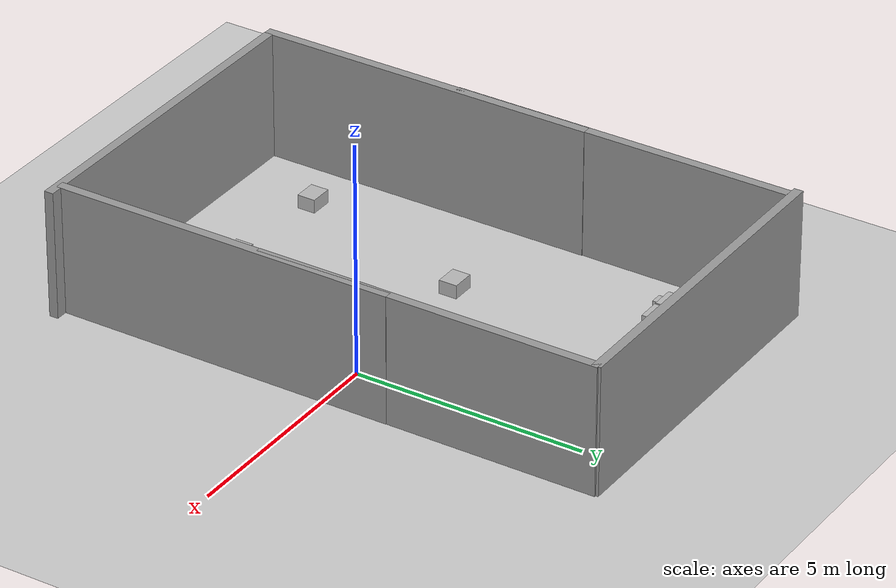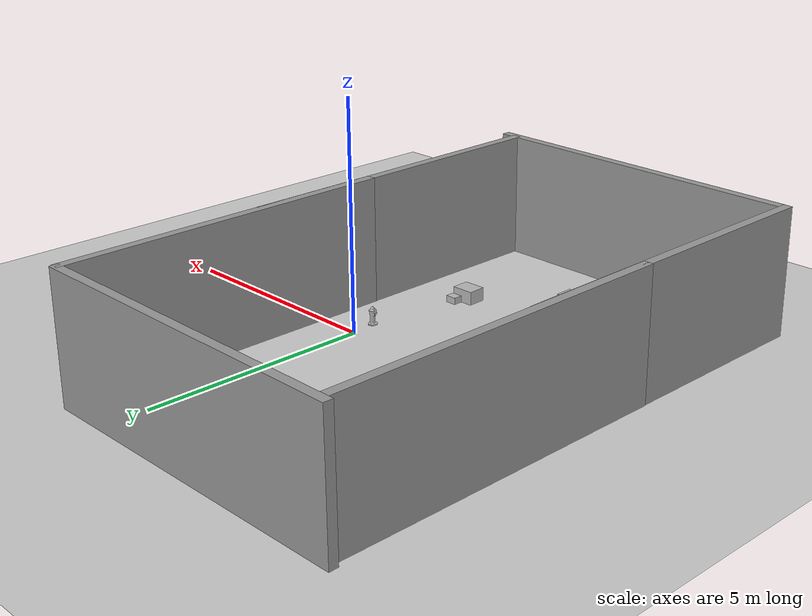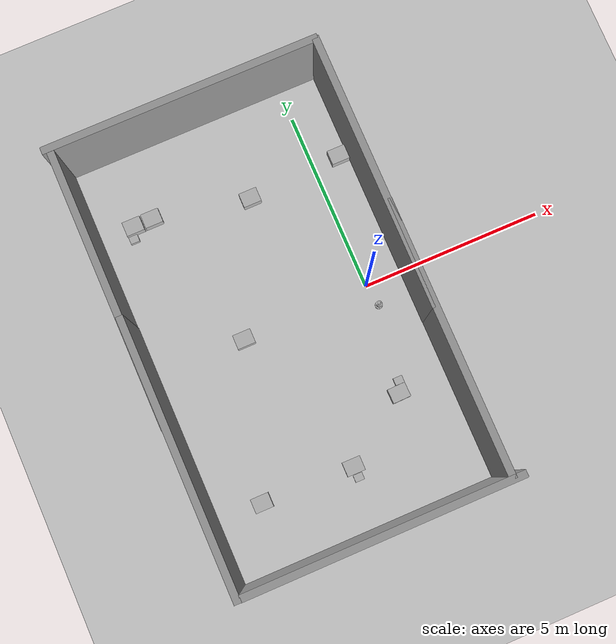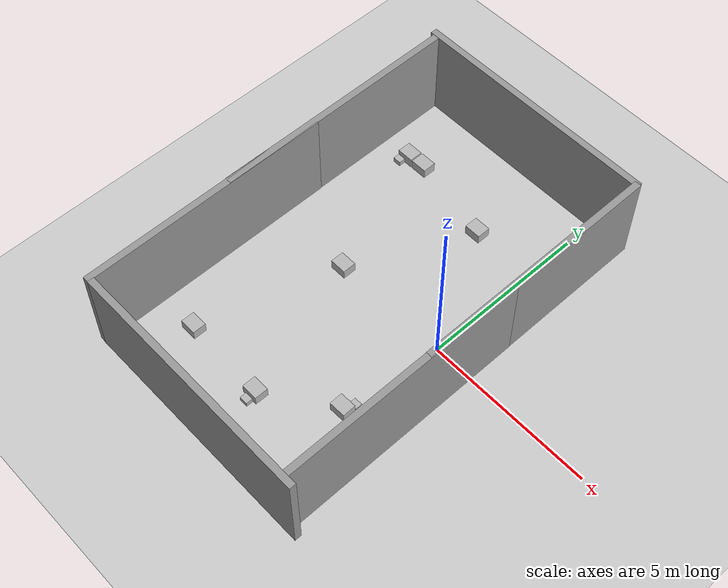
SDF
<sdf version="1.7">
 <world name="default">
  <light name="sun" type="directional">
   <pose>0 0 10 0 -0 0</pose>
   <diffuse>0.8 0.8 0.8 1</diffuse>
   <specular>0.2 0.2 0.2 1</specular>
   <attenuation>
    <range>1000</range>
    <constant>0.9</constant>
    <linear>0.01</linear>
    <quadratic>0.001</quadratic>
   </attenuation>
   <direction>-0.5 0.1 -0.9</direction>
   <spot><inner_angle>0</inner_angle><outer_angle>0</outer_angle><falloff>0</falloff></spot>
  </light>
  <model name="ground_plane">
   <static>1</static>
   <link name="link">
    <collision name="collision">
     <geometry><plane><normal>0 0 1</normal><size>100 100</size></plane></geometry>
     <surface><friction><ode><mu>100</mu><mu2>50</mu2></ode></friction></surface>
    </collision>
    <visual name="visual">
     <cast_shadows>0</cast_shadows>
     <geometry><plane><normal>0 0 1</normal><size>100 100</size></plane></geometry>
     <material>
      <script><uri>file://media/materials/scripts/gazebo.material</uri><name>Gazebo/Grey</name></script>
     </material>
    </visual>
   </link>
  </model>
  <gravity>0 0 -9.8</gravity>
  <magnetic_field>6e-06 2.3e-05 -4.2e-05</magnetic_field>
  <atmosphere type="adiabatic"/>
  <physics type="ode">
   <max_step_size>0.001</max_step_size>
   <real_time_factor>1</real_time_factor>
   <real_time_update_rate>1000</real_time_update_rate>
  </physics>
  <scene><ambient>0.4 0.4 0.4 1</ambient><background>0.7 0.7 0.7 1</background><shadows>1</shadows></scene>
  <audio><device>default</device></audio>
  <spherical_coordinates>
   <surface_model>EARTH_WGS84</surface_model>
   <latitude_deg>0</latitude_deg>
   <longitude_deg>0</longitude_deg>
   <elevation>0</elevation>
   <heading_deg>0</heading_deg>
  </spherical_coordinates>
  <model name="grey_wall">
   <static>1</static>
   <link name="link">
    <pose>0 0 1.4 0 -0 0</pose>
    <collision name="collision"><geometry><box><size>7.5 0.2 2.8</size></box></geometry></collision>
    <visual name="visual">
     <cast_shadows>0</cast_shadows>
     <geometry><box><size>7.5 0.2 2.8</size></box></geometry>
     <material>
      <script>
       <uri>model://grey_wall/materials/scripts</uri>
       <uri>model://grey_wall/materials/textures</uri>
       <name>vrc/grey_wall</name>
      </script>
     </material>
    </visual>
   </link>
   <pose>-2.60308 5.9479 0 0 -0 0</pose>
  </model>
  <model name="grey_wall_1">
   <static>1</static>
   <link name="link">
    <pose>0 0 1.4 0 -0 0</pose>
    <collision name="collision"><geometry><box><size>7.5 0.2 2.8</size></box></geometry></collision>
    <visual name="visual">
     <cast_shadows>0</cast_shadows>
     <geometry><box><size>7.5 0.2 2.8</size></box></geometry>
     <material>
      <script>
       <uri>model://grey_wall/materials/scripts</uri>
       <uri>model://grey_wall/materials/textures</uri>
       <name>vrc/grey_wall</name>
      </script>
     </material>
    </visual>
   </link>
   <pose>-6.14211 2.09598 0 0 0 -1.56955</pose>
  </model>
  <model name="grey_wall_1_clone">
   <static>1</static>
   <link name="link">
    <pose>0 0 1.4 0 -0 0</pose>
    <collision name="collision"><geometry><box><size>7.5 0.2 2.8</size></box></geometry></collision>
    <visual name="visual">
     <cast_shadows>0</cast_shadows>
     <geometry><box><size>7.5 0.2 2.8</size></box></geometry>
     <material>
      <script>
       <uri>model://grey_wall/materials/scripts</uri>
       <uri>model://grey_wall/materials/textures</uri>
       <name>vrc/grey_wall</name>
      </script>
     </material>
    </visual>
   </link>
   <pose>-6.12415 -2.40163 0 0 0 -1.56955</pose>
  </model>
  <model name="grey_wall_clone">
   <static>1</static>
   <link name="link">
    <pose>0 0 1.4 0 -0 0</pose>
    <collision name="collision"><geometry><box><size>7.5 0.2 2.8</size></box></geometry></collision>
    <visual name="visual">
     <cast_shadows>0</cast_shadows>
     <geometry><box><size>7.5 0.2 2.8</size></box></geometry>
     <material>
      <script>
       <uri>model://grey_wall/materials/scripts</uri>
       <uri>model://grey_wall/materials/textures</uri>
       <name>vrc/grey_wall</name>
      </script>
     </material>
    </visual>
   </link>
   <pose>-2.28727 -6.06059 0 0 -0 0</pose>
  </model>
  <model name="grey_wall_1_clone_0">
   <static>1</static>
   <link name="link">
    <pose>0 0 1.4 0 -0 0</pose>
    <collision name="collision"><geometry><box><size>7.5 0.2 2.8</size></box></geometry></collision>
    <visual name="visual">
     <cast_shadows>0</cast_shadows>
     <geometry><box><size>7.5 0.2 2.8</size></box></geometry>
     <material>
      <script>
       <uri>model://grey_wall/materials/scripts</uri>
       <uri>model://grey_wall/materials/textures</uri>
       <name>vrc/grey_wall</name>
      </script>
     </material>
    </visual>
   </link>
   <pose>1.08805 2.23909 0 0 0 -1.56955</pose>
  </model>
  <model name="grey_wall_1_clone_0_clone">
   <static>1</static>
   <link name="link">
    <pose>0 0 1.4 0 -0 0</pose>
    <collision name="collision"><geometry><box><size>7.5 0.2 2.8</size></box></geometry></collision>
    <visual name="visual">
     <cast_shadows>0</cast_shadows>
     <geometry><box><size>7.5 0.2 2.8</size></box></geometry>
     <material>
      <script>
       <uri>model://grey_wall/materials/scripts</uri>
       <uri>model://grey_wall/materials/textures</uri>
       <name>vrc/grey_wall</name>
      </script>
     </material>
    </visual>
   </link>
   <pose>1.10041 -2.31362 0 0 0 -1.56955</pose>
  </model>
  <model name="cardboard_box">
   <pose>-5.10522 3.9209 0.149 0 -0 0</pose>
   <link name="link">
    <inertial>
     <mass>2</mass>
     <inertia>
      <ixx>0.0416667</ixx>
      <ixy>0</ixy>
      <ixz>0</ixz>
      <iyy>0.0566667</iyy>
      <iyz>0</iyz>
      <izz>0.0683333</izz>
     </inertia>
    </inertial>
    <collision name="collision">
     <geometry><box><size>0.5 0.4 0.3</size></box></geometry>
     <surface>
      <friction><ode><mu>1</mu><mu2>1</mu2></ode></friction>
      <contact><ode><kp>1e+07</kp><kd>1</kd><min_depth>0.001</min_depth><max_vel>0.1</max_vel></ode></contact>
     </surface>
    </collision>
    <visual name="visual">
     <pose>0 0 -0.15 0 -0 0</pose>
     <geometry>
      <mesh><uri>model://cardboard_box/meshes/cardboard_box.dae</uri><scale>1.25932 1.00745 0.755591</scale></mesh>
     </geometry>
    </visual>
   </link>
  </model>
  <model name="cardboard_box_smaller">
   <pose>-5.22386 3.61255 0.074 0 -0 0</pose>
   <link name="link">
    <inertial>
     <mass>0.5</mass>
     <inertia>
      <ixx>0.0104167</ixx>
      <ixy>0</ixy>
      <ixz>0</ixz>
      <iyy>0.0141667</iyy>
      <iyz>0</iyz>
      <izz>0.0170833</izz>
     </inertia>
    </inertial>
    <collision name="collision">
     <geometry><box><size>0.25 0.2 0.15</size></box></geometry>
     <surface>
      <friction><ode><mu>1</mu><mu2>1</mu2></ode></friction>
      <contact><ode><kp>1e+07</kp><kd>1</kd><min_depth>0.001</min_depth><max_vel>0.1</max_vel></ode></contact>
     </surface>
    </collision>
    <visual name="visual">
     <pose>0 0 -0.075 0 -0 0</pose>
     <geometry>
      <mesh>
       <uri>model://cardboard_box/meshes/cardboard_box.dae</uri>
       <scale>0.629659 0.503728 0.377796</scale>
      </mesh>
     </geometry>
    </visual>
   </link>
  </model>
  <model name="cardboard_box_0">
   <pose>-4.56877 3.92575 0.149 0 -0 0</pose>
   <link name="link">
    <inertial>
     <mass>2</mass>
     <inertia>
      <ixx>0.0416667</ixx>
      <ixy>0</ixy>
      <ixz>0</ixz>
      <iyy>0.0566667</iyy>
      <iyz>0</iyz>
      <izz>0.0683333</izz>
     </inertia>
    </inertial>
    <collision name="collision">
     <geometry><box><size>0.5 0.4 0.3</size></box></geometry>
     <surface>
      <friction><ode><mu>1</mu><mu2>1</mu2></ode></friction>
      <contact><ode><kp>1e+07</kp><kd>1</kd><min_depth>0.001</min_depth><max_vel>0.1</max_vel></ode></contact>
     </surface>
    </collision>
    <visual name="visual">
     <pose>0 0 -0.15 0 -0 0</pose>
     <geometry>
      <mesh><uri>model://cardboard_box/meshes/cardboard_box.dae</uri><scale>1.25932 1.00745 0.755591</scale></mesh>
     </geometry>
    </visual>
   </link>
  </model>
  <model name="cardboard_box_clone">
   <pose>-4.79526 -4.19927 0.149 0 -0 0</pose>
   <link name="link">
    <inertial>
     <mass>2</mass>
     <inertia>
      <ixx>0.0416667</ixx>
      <ixy>0</ixy>
      <ixz>0</ixz>
      <iyy>0.0566667</iyy>
      <iyz>0</iyz>
      <izz>0.0683333</izz>
     </inertia>
    </inertial>
    <collision name="collision">
     <geometry><box><size>0.5 0.4 0.3</size></box></geometry>
     <surface>
      <friction><ode><mu>1</mu><mu2>1</mu2></ode></friction>
      <contact><ode><kp>1e+07</kp><kd>1</kd><min_depth>0.001</min_depth><max_vel>0.1</max_vel></ode></contact>
     </surface>
    </collision>
    <visual name="visual">
     <pose>0 0 -0.15 0 -0 0</pose>
     <geometry>
      <mesh><uri>model://cardboard_box/meshes/cardboard_box.dae</uri><scale>1.25932 1.00745 0.755591</scale></mesh>
     </geometry>
    </visual>
   </link>
  </model>
  <model name="cardboard_box_clone_0">
   <pose>-2.22429 -4.27113 0.149 0 -0 0</pose>
   <link name="link">
    <inertial>
     <mass>2</mass>
     <inertia>
      <ixx>0.0416667</ixx>
      <ixy>0</ixy>
      <ixz>0</ixz>
      <iyy>0.0566667</iyy>
      <iyz>0</iyz>
      <izz>0.0683333</izz>
     </inertia>
    </inertial>
    <collision name="collision">
     <geometry><box><size>0.5 0.4 0.3</size></box></geometry>
     <surface>
      <friction><ode><mu>1</mu><mu2>1</mu2></ode></friction>
      <contact><ode><kp>1e+07</kp><kd>1</kd><min_depth>0.001</min_depth><max_vel>0.1</max_vel></ode></contact>
     </surface>
    </collision>
    <visual name="visual">
     <pose>0 0 -0.15 0 -0 0</pose>
     <geometry>
      <mesh><uri>model://cardboard_box/meshes/cardboard_box.dae</uri><scale>1.25932 1.00745 0.755591</scale></mesh>
     </geometry>
    </visual>
   </link>
  </model>
  <model name="cardboard_box_clone_0_clone">
   <pose>-0.360871 -2.98609 0.149 0 -0 0.022411</pose>
   <link name="link">
    <inertial>
     <mass>2</mass>
     <inertia>
      <ixx>0.0416667</ixx>
      <ixy>0</ixy>
      <ixz>0</ixz>
      <iyy>0.0566667</iyy>
      <iyz>0</iyz>
      <izz>0.0683333</izz>
     </inertia>
    </inertial>
    <collision name="collision">
     <geometry><box><size>0.5 0.4 0.3</size></box></geometry>
     <surface>
      <friction><ode><mu>1</mu><mu2>1</mu2></ode></friction>
      <contact><ode><kp>1e+07</kp><kd>1</kd><min_depth>0.001</min_depth><max_vel>0.1</max_vel></ode></contact>
     </surface>
    </collision>
    <visual name="visual">
     <pose>0 0 -0.15 0 -0 0</pose>
     <geometry>
      <mesh><uri>model://cardboard_box/meshes/cardboard_box.dae</uri><scale>1.25932 1.00745 0.755591</scale></mesh>
     </geometry>
    </visual>
   </link>
  </model>
  <model name="cardboard_box_clone_0_clone_0">
   <pose>-1.92355 3.40929 0.149 0 -0 0</pose>
   <link name="link">
    <inertial>
     <mass>2</mass>
     <inertia>
      <ixx>0.0416667</ixx>
      <ixy>0</ixy>
      <ixz>0</ixz>
      <iyy>0.0566667</iyy>
      <iyz>0</iyz>
      <izz>0.0683333</izz>
     </inertia>
    </inertial>
    <collision name="collision">
     <geometry><box><size>0.5 0.4 0.3</size></box></geometry>
     <surface>
      <friction><ode><mu>1</mu><mu2>1</mu2></ode></friction>
      <contact><ode><kp>1e+07</kp><kd>1</kd><min_depth>0.001</min_depth><max_vel>0.1</max_vel></ode></contact>
     </surface>
    </collision>
    <visual name="visual">
     <pose>0 0 -0.15 0 -0 0</pose>
     <geometry>
      <mesh><uri>model://cardboard_box/meshes/cardboard_box.dae</uri><scale>1.25932 1.00745 0.755591</scale></mesh>
     </geometry>
    </visual>
   </link>
  </model>
  <model name="cardboard_box_clone_0_clone_3">
   <pose>0.728358 3.55535 0.149 0 -0 0</pose>
   <link name="link">
    <inertial>
     <mass>2</mass>
     <inertia>
      <ixx>0.0416667</ixx>
      <ixy>0</ixy>
      <ixz>0</ixz>
      <iyy>0.0566667</iyy>
      <iyz>0</iyz>
      <izz>0.0683333</izz>
     </inertia>
    </inertial>
    <collision name="collision">
     <geometry><box><size>0.5 0.4 0.3</size></box></geometry>
     <surface>
      <friction><ode><mu>1</mu><mu2>1</mu2></ode></friction>
      <contact><ode><kp>1e+07</kp><kd>1</kd><min_depth>0.001</min_depth><max_vel>0.1</max_vel></ode></contact>
     </surface>
    </collision>
    <visual name="visual">
     <pose>0 0 -0.15 0 -0 0</pose>
     <geometry>
      <mesh><uri>model://cardboard_box/meshes/cardboard_box.dae</uri><scale>1.25932 1.00745 0.755591</scale></mesh>
     </geometry>
    </visual>
   </link>
  </model>
  <model name="cardboard_box_clone_0_clone_5">
   <pose>-3.55895 -0.057975 0.149 0 -0 0</pose>
   <link name="link">
    <inertial>
     <mass>2</mass>
     <inertia>
      <ixx>0.0416667</ixx>
      <ixy>0</ixy>
      <ixz>0</ixz>
      <iyy>0.0566667</iyy>
      <iyz>0</iyz>
      <izz>0.0683333</izz>
     </inertia>
    </inertial>
    <collision name="collision">
     <geometry><box><size>0.5 0.4 0.3</size></box></geometry>
     <surface>
      <friction><ode><mu>1</mu><mu2>1</mu2></ode></friction>
      <contact><ode><kp>1e+07</kp><kd>1</kd><min_depth>0.001</min_depth><max_vel>0.1</max_vel></ode></contact>
     </surface>
    </collision>
    <visual name="visual">
     <pose>0 0 -0.15 0 -0 0</pose>
     <geometry>
      <mesh><uri>model://cardboard_box/meshes/cardboard_box.dae</uri><scale>1.25932 1.00745 0.755591</scale></mesh>
     </geometry>
    </visual>
   </link>
  </model>
  <model name="cardboard_box_smaller_0">
   <pose>-0.223318 -2.67361 0.074 0 -0 0</pose>
   <link name="link">
    <inertial>
     <mass>0.5</mass>
     <inertia>
      <ixx>0.0104167</ixx>
      <ixy>0</ixy>
      <ixz>0</ixz>
      <iyy>0.0141667</iyy>
      <iyz>0</iyz>
      <izz>0.0170833</izz>
     </inertia>
    </inertial>
    <collision name="collision">
     <geometry><box><size>0.25 0.2 0.15</size></box></geometry>
     <surface>
      <friction><ode><mu>1</mu><mu2>1</mu2></ode></friction>
      <contact><ode><kp>1e+07</kp><kd>1</kd><min_depth>0.001</min_depth><max_vel>0.1</max_vel></ode></contact>
     </surface>
    </collision>
    <visual name="visual">
     <pose>0 0 -0.075 0 -0 0</pose>
     <geometry>
      <mesh>
       <uri>model://cardboard_box/meshes/cardboard_box.dae</uri>
       <scale>0.629659 0.503728 0.377796</scale>
      </mesh>
     </geometry>
    </visual>
   </link>
  </model>
  <model name="cardboard_box_smaller_1">
   <pose>-2.21068 -4.58557 0.074 0 -0 0</pose>
   <link name="link">
    <inertial>
     <mass>0.5</mass>
     <inertia>
      <ixx>0.0104167</ixx>
      <ixy>0</ixy>
      <ixz>0</ixz>
      <iyy>0.0141667</iyy>
      <iyz>0</iyz>
      <izz>0.0170833</izz>
     </inertia>
    </inertial>
    <collision name="collision">
     <geometry><box><size>0.25 0.2 0.15</size></box></geometry>
     <surface>
      <friction><ode><mu>1</mu><mu2>1</mu2></ode></friction>
      <contact><ode><kp>1e+07</kp><kd>1</kd><min_depth>0.001</min_depth><max_vel>0.1</max_vel></ode></contact>
     </surface>
    </collision>
    <visual name="visual">
     <pose>0 0 -0.075 0 -0 0</pose>
     <geometry>
      <mesh>
       <uri>model://cardboard_box/meshes/cardboard_box.dae</uri>
       <scale>0.629659 0.503728 0.377796</scale>
      </mesh>
     </geometry>
    </visual>
   </link>
  </model>
  <model name="object_to_find_1">
   <static>1</static>
   <link name="link">
    <collision name="collision">
     <geometry><mesh><uri>model://fire_hydrant_small/meshes/fire_hydrant.dae</uri></mesh></geometry>
    </collision>
    <visual name="visual">
     <geometry><mesh><uri>model://fire_hydrant_small/meshes/fire_hydrant.dae</uri></mesh></geometry>
    </visual>
   </link>
   <pose>0.11 -0.61 -0.14 0 -0 0</pose>
  </model>
 </world>
</sdf>
